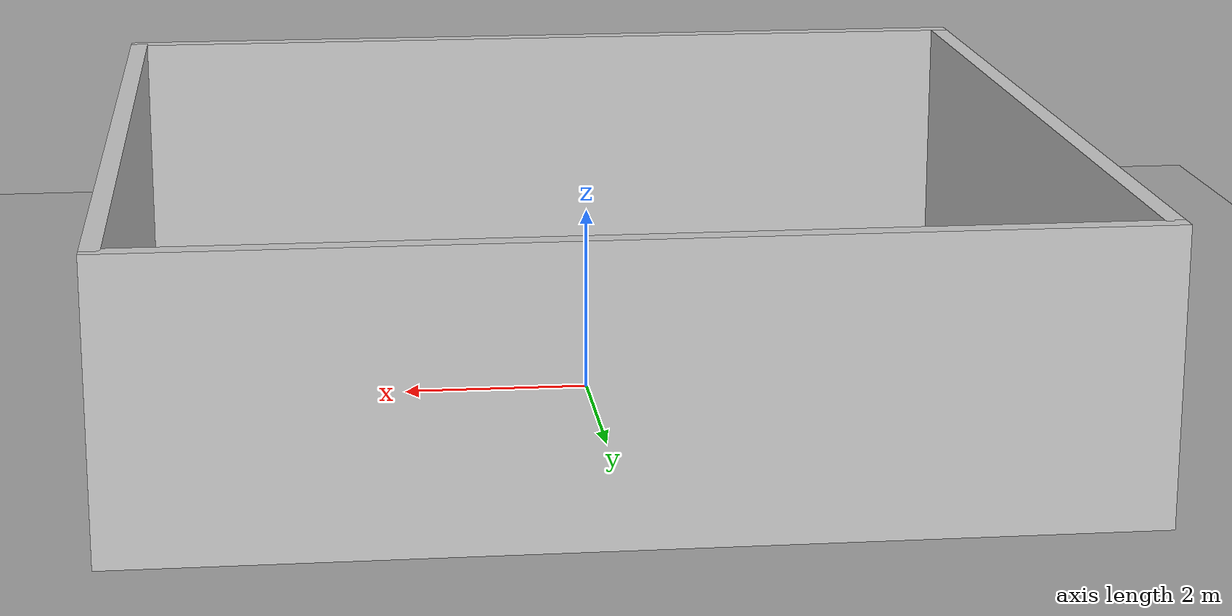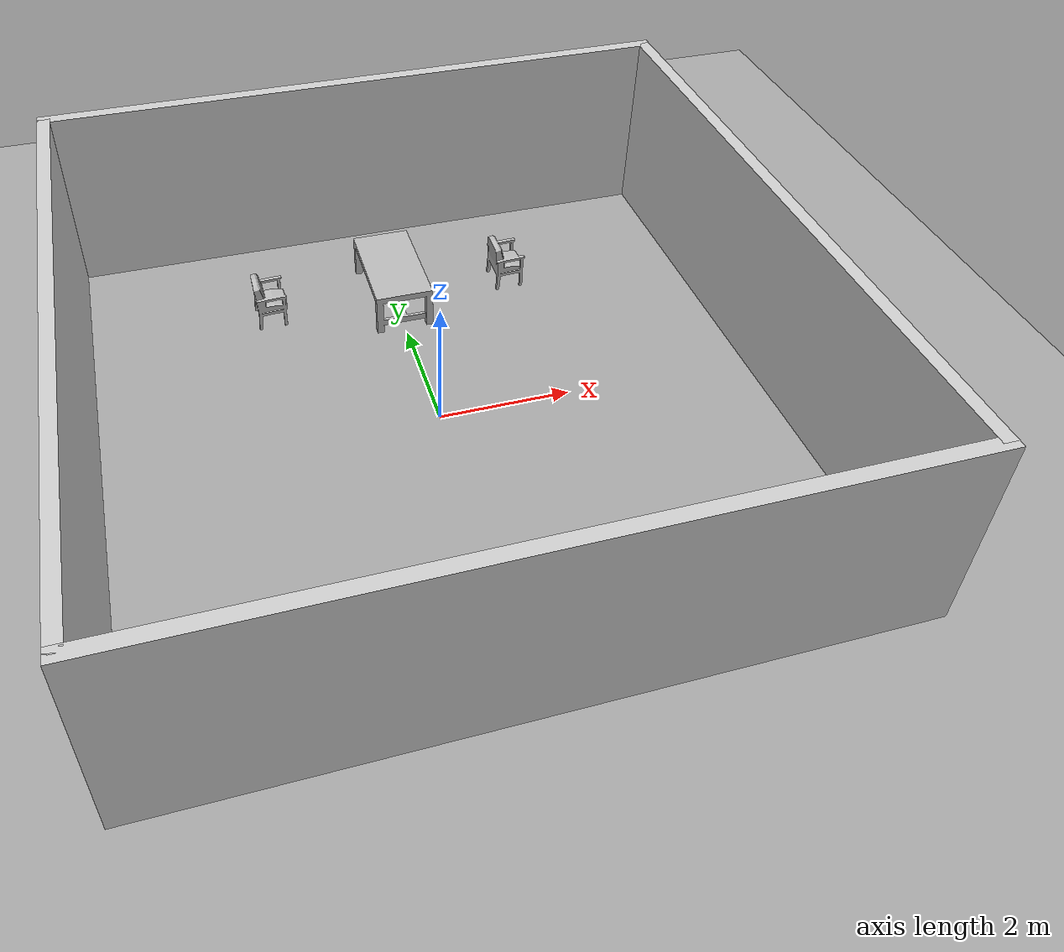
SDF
<?xml version="1.0" ?>
<sdf version="1.8">
  <world name="yolo_world">

    <!-- ── Core System Plugins for Gazebo Harmonic ── -->
    <plugin filename="gz-sim-physics-system" name="gz::sim::systems::Physics"/>
    <plugin filename="gz-sim-scene-broadcaster-system" name="gz::sim::systems::SceneBroadcaster"/>
    <plugin filename="gz-sim-user-commands-system" name="gz::sim::systems::UserCommands"/>
    <plugin filename="gz-sim-sensors-system" name="gz::sim::systems::Sensors">
      <render_engine>ogre2</render_engine>
    </plugin>
    <plugin filename="gz-sim-contact-system" name="gz::sim::systems::Contact"/>

    <!-- ── Lighting ── -->
    <light type="directional" name="sun">
      <cast_shadows>true</cast_shadows>
      <pose>0 0 10 0 0 0</pose>
      <diffuse>0.9 0.9 0.9 1</diffuse>
      <specular>0.3 0.3 0.3 1</specular>
      <direction>-0.5 0.3 -0.9</direction>
    </light>

    <light type="point" name="ceiling_light_1">
      <pose>0 0 3.0 0 0 0</pose>
      <diffuse>0.8 0.8 0.75 1</diffuse>
    </light>

    <!-- ── Ground Plane ── -->
    <model name="ground_plane">
      <static>true</static>
      <link name="link">
        <collision name="collision"><geometry><plane><normal>0 0 1</normal><size>100 100</size></plane></geometry></collision>
        <visual name="visual">
          <geometry><plane><normal>0 0 1</normal><size>100 100</size></plane></geometry>
          <material>
            <ambient>0.65 0.65 0.65 1</ambient>
            <diffuse>0.65 0.65 0.65 1</diffuse>
          </material>
        </visual>
      </link>
    </model>

    <!-- ── Room Walls (10m x 10m) ── -->
    <model name="indoor_walls">
      <static>true</static>

      <!-- North Wall -->
      <link name="wall_north">
        <pose>5 0 1.5 0 0 0</pose>
        <collision name="collision"><geometry><box><size>0.2 10 3</size></box></geometry></collision>
        <visual name="visual">
          <geometry><box><size>0.2 10 3</size></box></geometry>
          <material><ambient>0.8 0.8 0.8 1</ambient><diffuse>0.8 0.8 0.8 1</diffuse></material>
        </visual>
      </link>

      <!-- South Wall -->
      <link name="wall_south">
        <pose>-5 0 1.5 0 0 0</pose>
        <collision name="collision"><geometry><box><size>0.2 10 3</size></box></geometry></collision>
        <visual name="visual">
          <geometry><box><size>0.2 10 3</size></box></geometry>
          <material><ambient>0.8 0.8 0.8 1</ambient><diffuse>0.8 0.8 0.8 1</diffuse></material>
        </visual>
      </link>

      <!-- East Wall -->
      <link name="wall_east">
        <pose>0 5 1.5 0 0 1.570796</pose>
        <collision name="collision"><geometry><box><size>0.2 10.2 3</size></box></geometry></collision>
        <visual name="visual">
          <geometry><box><size>0.2 10.2 3</size></box></geometry>
          <material><ambient>0.8 0.8 0.8 1</ambient><diffuse>0.8 0.8 0.8 1</diffuse></material>
        </visual>
      </link>

      <!-- West Wall -->
      <link name="wall_west">
        <pose>0 -5 1.5 0 0 1.570796</pose>
        <collision name="collision"><geometry><box><size>0.2 10.2 3</size></box></geometry></collision>
        <visual name="visual">
          <geometry><box><size>0.2 10.2 3</size></box></geometry>
          <material><ambient>0.8 0.8 0.8 1</ambient><diffuse>0.8 0.8 0.8 1</diffuse></material>
        </visual>
      </link>
    </model>

    <!-- ── YOLO COCO DATASET OBJECTS (Auto-downloaded by Gazebo Fuel) ──  -->

    <!-- ── Furniture in a straight line along X axis at y=3 ── -->

    <!-- COCO Class 56: Chair (1) – left -->
    <include>
      <name>chair_1</name>
      <uri>https://fuel.gazebosim.org/1.0/OpenRobotics/models/Chair</uri>
      <pose>-2 3 0 0 0 0</pose>
    </include>

    <!-- COCO Class 61: Dining Table – centre -->
    <include>
      <name>dining_table</name>
      <uri>https://fuel.gazebosim.org/1.0/OpenRobotics/models/Table</uri>
      <pose>0 3 0 0 0 0</pose>
    </include>

    <!-- COCO Class 56: Chair (2) – right -->
    <include>
      <name>chair_2</name>
      <uri>https://fuel.gazebosim.org/1.0/OpenRobotics/models/Chair</uri>
      <pose>2 3 0 0 0 0</pose>
    </include>

  </world>
</sdf>

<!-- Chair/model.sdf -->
<sdf version="1.6">
  <model name='Chair'>
    <link name="body">
      <pose>0 0 0 0 0 1.5708</pose>

      <visual name="visual">
        <geometry>
          <mesh>
            <uri>model://Chair/meshes/Chair.obj</uri>
            <scale>0.00817 0.00817 0.00817</scale>
          </mesh>
        </geometry>
      </visual>

      <collision name="collision">
        <geometry>
          <mesh>
            <uri>model://Chair/meshes/Chair.obj</uri>
            <scale>0.00817 0.00817 0.00817</scale>
          </mesh>
        </geometry>
      </collision>

    </link>
  </model>
</sdf>

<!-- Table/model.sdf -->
<sdf version="1.5">
  <model name="Table">
    <link name="link">
      <pose>0 0 0 0 0 1.57</pose>

        <visual name="visual">
          <geometry>
            <mesh><uri>model://Table/meshes/table.obj</uri></mesh>
          </geometry>
        </visual>

        <collision name="collision">
          <geometry>
            <mesh><uri>model://Table/meshes/table.obj</uri></mesh>
          </geometry>
        </collision>

    </link>
  </model>
</sdf>
